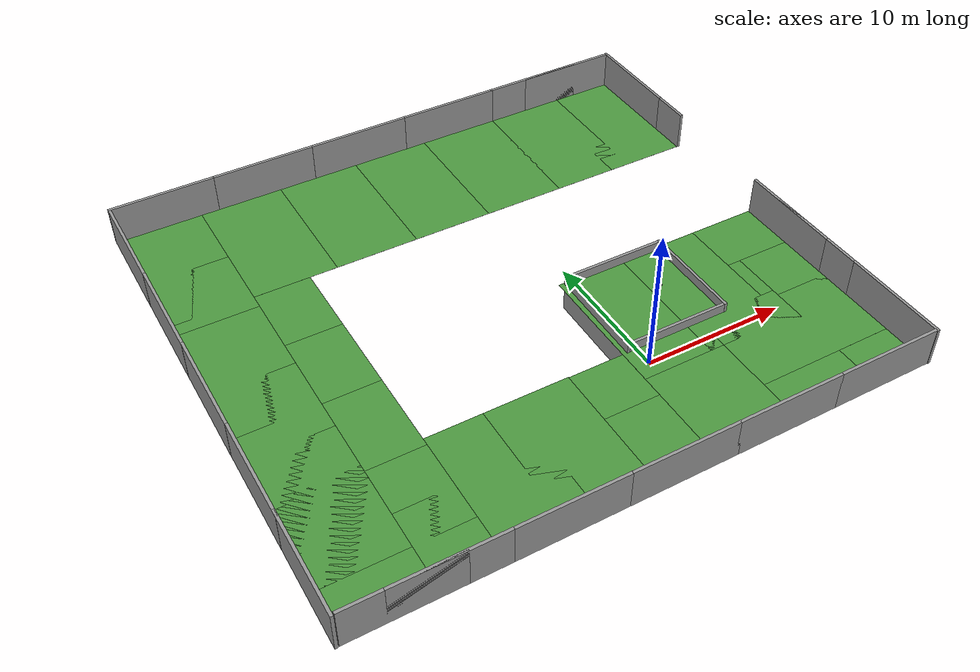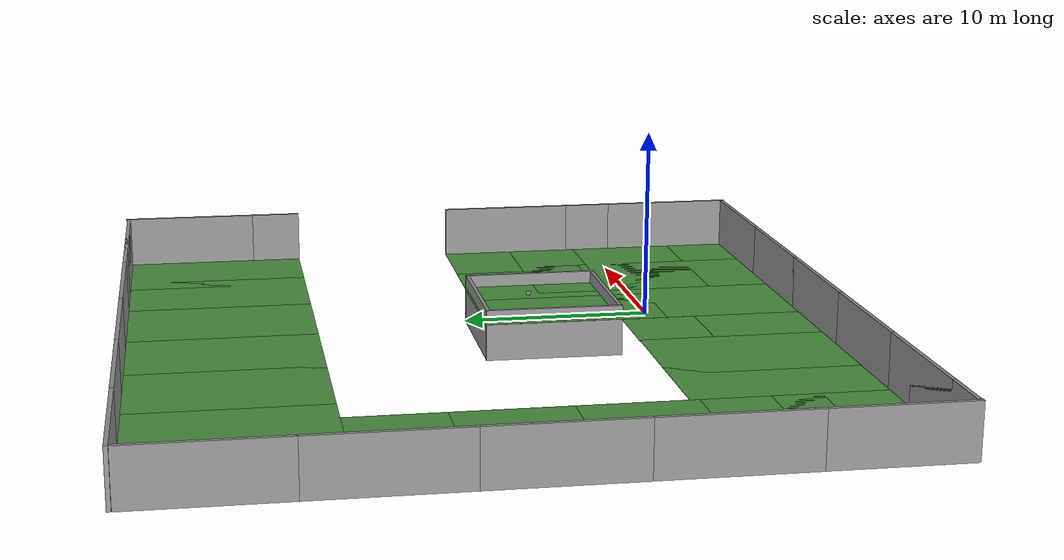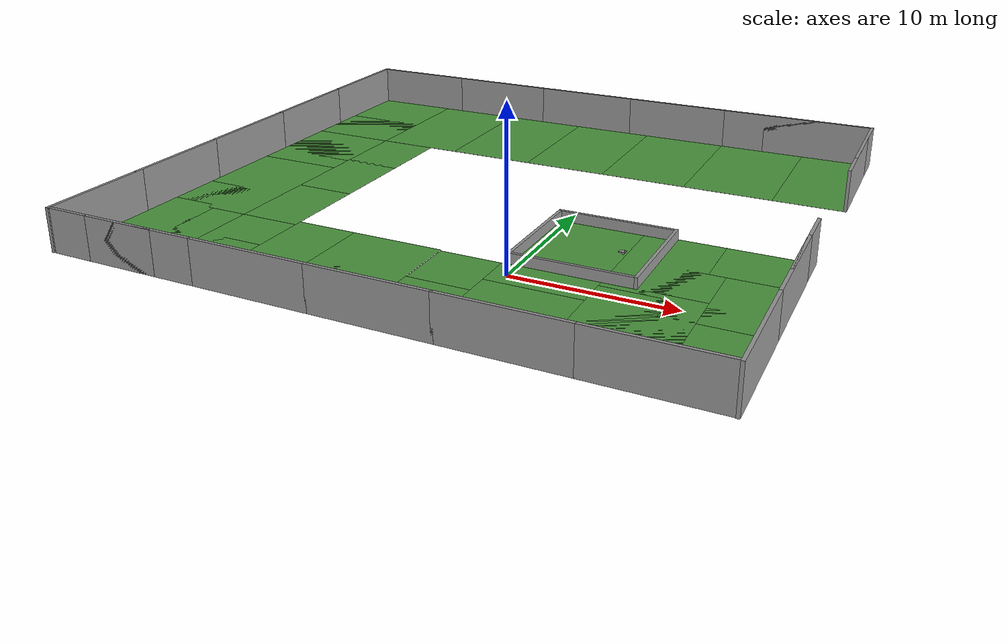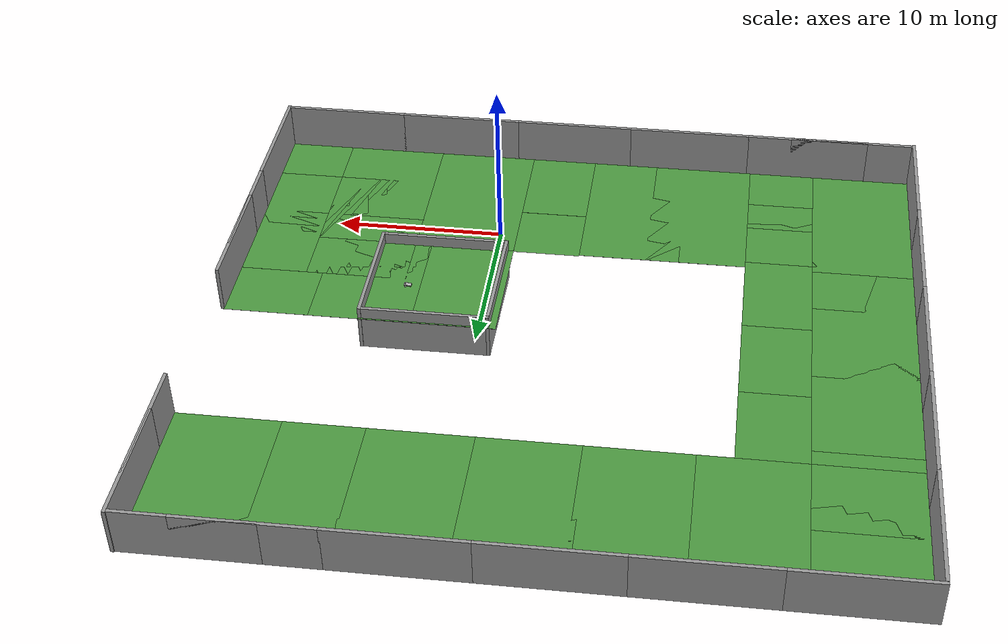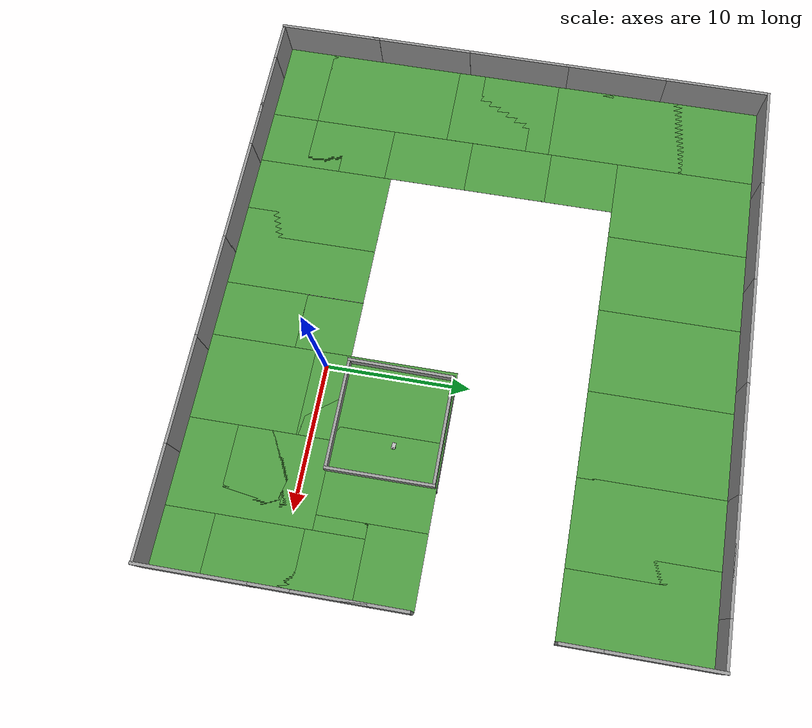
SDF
<sdf version="1.7">
 <world name="default">
  <physics name="ode_70iters" type="ode">
   <max_step_size>0.001</max_step_size>
   <real_time_update_rate>1000</real_time_update_rate>
   <ode>
    <solver>
     <type>quick</type>
     <iters>70</iters>
     <sor>1.3</sor>
     <use_dynamic_moi_rescaling>0</use_dynamic_moi_rescaling>
    </solver>
    <constraints>
     <cfm>0</cfm>
     <erp>0.2</erp>
     <contact_max_correcting_vel>100</contact_max_correcting_vel>
     <contact_surface_layer>0.001</contact_surface_layer>
    </constraints>
   </ode>
   <real_time_factor>1</real_time_factor>
  </physics>
  <model name="garden_0">
   <static>1</static>
   <link name="link">
    <collision name="collision">
     <geometry><plane><normal>0 0 1</normal><size>100 100</size></plane></geometry>
     <surface><friction><ode><mu>100</mu><mu2>50</mu2></ode></friction></surface>
    </collision>
    <visual name="visual_0">
     <pose>-2 0 0 0 -0 0</pose>
     <cast_shadows>0</cast_shadows>
     <geometry><plane><normal>0 0 1</normal><size>6 10</size></plane></geometry>
     <material>
      <script>
       <uri>model://garden/materials/scripts</uri>
       <uri>model://garden/materials/textures</uri>
       <name>vrc/grass</name>
      </script>
     </material>
    </visual>
    <visual name="visual_1">
     <pose>3 -2 0 0 -0 0</pose>
     <cast_shadows>0</cast_shadows>
     <geometry><plane><normal>0 0 1</normal><size>4 6</size></plane></geometry>
     <material>
      <script>
       <uri>model://garden/materials/scripts</uri>
       <uri>model://garden/materials/textures</uri>
       <name>vrc/grass</name>
      </script>
     </material>
    </visual>
   </link>
   <pose>0 0.5 0 0 -0 1.5708</pose>
  </model>
  <model name="garden_1">
   <static>1</static>
   <link name="link">
    <collision name="collision">
     <geometry><plane><normal>0 0 1</normal><size>100 100</size></plane></geometry>
     <surface><friction><ode><mu>100</mu><mu2>50</mu2></ode></friction></surface>
    </collision>
    <visual name="visual_0">
     <pose>-2 0 0 0 -0 0</pose>
     <cast_shadows>0</cast_shadows>
     <geometry><plane><normal>0 0 1</normal><size>6 10</size></plane></geometry>
     <material>
      <script>
       <uri>model://garden/materials/scripts</uri>
       <uri>model://garden/materials/textures</uri>
       <name>vrc/grass</name>
      </script>
     </material>
    </visual>
    <visual name="visual_1">
     <pose>3 -2 0 0 -0 0</pose>
     <cast_shadows>0</cast_shadows>
     <geometry><plane><normal>0 0 1</normal><size>4 6</size></plane></geometry>
     <material>
      <script>
       <uri>model://garden/materials/scripts</uri>
       <uri>model://garden/materials/textures</uri>
       <name>vrc/grass</name>
      </script>
     </material>
    </visual>
   </link>
   <pose>10 0 0 0 -0 1.5708</pose>
  </model>
  <model name="garden_2">
   <static>1</static>
   <link name="link">
    <collision name="collision">
     <geometry><plane><normal>0 0 1</normal><size>100 100</size></plane></geometry>
     <surface><friction><ode><mu>100</mu><mu2>50</mu2></ode></friction></surface>
    </collision>
    <visual name="visual_0">
     <pose>-2 0 0 0 -0 0</pose>
     <cast_shadows>0</cast_shadows>
     <geometry><plane><normal>0 0 1</normal><size>6 10</size></plane></geometry>
     <material>
      <script>
       <uri>model://garden/materials/scripts</uri>
       <uri>model://garden/materials/textures</uri>
       <name>vrc/grass</name>
      </script>
     </material>
    </visual>
    <visual name="visual_1">
     <pose>3 -2 0 0 -0 0</pose>
     <cast_shadows>0</cast_shadows>
     <geometry><plane><normal>0 0 1</normal><size>4 6</size></plane></geometry>
     <material>
      <script>
       <uri>model://garden/materials/scripts</uri>
       <uri>model://garden/materials/textures</uri>
       <name>vrc/grass</name>
      </script>
     </material>
    </visual>
   </link>
   <pose>10 0 0 0 -0 0</pose>
  </model>
  <model name="garden_3">
   <static>1</static>
   <link name="link">
    <collision name="collision">
     <geometry><plane><normal>0 0 1</normal><size>100 100</size></plane></geometry>
     <surface><friction><ode><mu>100</mu><mu2>50</mu2></ode></friction></surface>
    </collision>
    <visual name="visual_0">
     <pose>-2 0 0 0 -0 0</pose>
     <cast_shadows>0</cast_shadows>
     <geometry><plane><normal>0 0 1</normal><size>6 10</size></plane></geometry>
     <material>
      <script>
       <uri>model://garden/materials/scripts</uri>
       <uri>model://garden/materials/textures</uri>
       <name>vrc/grass</name>
      </script>
     </material>
    </visual>
    <visual name="visual_1">
     <pose>3 -2 0 0 -0 0</pose>
     <cast_shadows>0</cast_shadows>
     <geometry><plane><normal>0 0 1</normal><size>4 6</size></plane></geometry>
     <material>
      <script>
       <uri>model://garden/materials/scripts</uri>
       <uri>model://garden/materials/textures</uri>
       <name>vrc/grass</name>
      </script>
     </material>
    </visual>
   </link>
   <pose>4 4 0 0 -0 0</pose>
  </model>
  <model name="garden_4">
   <static>1</static>
   <link name="link">
    <collision name="collision">
     <geometry><plane><normal>0 0 1</normal><size>100 100</size></plane></geometry>
     <surface><friction><ode><mu>100</mu><mu2>50</mu2></ode></friction></surface>
    </collision>
    <visual name="visual_0">
     <pose>-2 0 0 0 -0 0</pose>
     <cast_shadows>0</cast_shadows>
     <geometry><plane><normal>0 0 1</normal><size>6 10</size></plane></geometry>
     <material>
      <script>
       <uri>model://garden/materials/scripts</uri>
       <uri>model://garden/materials/textures</uri>
       <name>vrc/grass</name>
      </script>
     </material>
    </visual>
    <visual name="visual_1">
     <pose>3 -2 0 0 -0 0</pose>
     <cast_shadows>0</cast_shadows>
     <geometry><plane><normal>0 0 1</normal><size>4 6</size></plane></geometry>
     <material>
      <script>
       <uri>model://garden/materials/scripts</uri>
       <uri>model://garden/materials/textures</uri>
       <name>vrc/grass</name>
      </script>
     </material>
    </visual>
   </link>
   <pose>9 4 0 0 -0 0</pose>
  </model>
  <model name="garden_5">
   <static>1</static>
   <link name="link">
    <collision name="collision">
     <geometry><plane><normal>0 0 1</normal><size>100 100</size></plane></geometry>
     <surface><friction><ode><mu>100</mu><mu2>50</mu2></ode></friction></surface>
    </collision>
    <visual name="visual_0">
     <pose>-2 0 0 0 -0 0</pose>
     <cast_shadows>0</cast_shadows>
     <geometry><plane><normal>0 0 1</normal><size>6 10</size></plane></geometry>
     <material>
      <script>
       <uri>model://garden/materials/scripts</uri>
       <uri>model://garden/materials/textures</uri>
       <name>vrc/grass</name>
      </script>
     </material>
    </visual>
    <visual name="visual_1">
     <pose>3 -2 0 0 -0 0</pose>
     <cast_shadows>0</cast_shadows>
     <geometry><plane><normal>0 0 1</normal><size>4 6</size></plane></geometry>
     <material>
      <script>
       <uri>model://garden/materials/scripts</uri>
       <uri>model://garden/materials/textures</uri>
       <name>vrc/grass</name>
      </script>
     </material>
    </visual>
   </link>
   <pose>10 4 0 0 -0 1.5708</pose>
  </model>
  <model name="garden_6">
   <static>1</static>
   <link name="link">
    <collision name="collision">
     <geometry><plane><normal>0 0 1</normal><size>100 100</size></plane></geometry>
     <surface><friction><ode><mu>100</mu><mu2>50</mu2></ode></friction></surface>
    </collision>
    <visual name="visual_0">
     <pose>-2 0 0 0 -0 0</pose>
     <cast_shadows>0</cast_shadows>
     <geometry><plane><normal>0 0 1</normal><size>6 10</size></plane></geometry>
     <material>
      <script>
       <uri>model://garden/materials/scripts</uri>
       <uri>model://garden/materials/textures</uri>
       <name>vrc/grass</name>
      </script>
     </material>
    </visual>
    <visual name="visual_1">
     <pose>3 -2 0 0 -0 0</pose>
     <cast_shadows>0</cast_shadows>
     <geometry><plane><normal>0 0 1</normal><size>4 6</size></plane></geometry>
     <material>
      <script>
       <uri>model://garden/materials/scripts</uri>
       <uri>model://garden/materials/textures</uri>
       <name>vrc/grass</name>
      </script>
     </material>
    </visual>
   </link>
   <pose>3.75 23 0 0 -0 0</pose>
  </model>
  <model name="garden_7">
   <static>1</static>
   <link name="link">
    <collision name="collision">
     <geometry><plane><normal>0 0 1</normal><size>100 100</size></plane></geometry>
     <surface><friction><ode><mu>100</mu><mu2>50</mu2></ode></friction></surface>
    </collision>
    <visual name="visual_0">
     <pose>-2 0 0 0 -0 0</pose>
     <cast_shadows>0</cast_shadows>
     <geometry><plane><normal>0 0 1</normal><size>6 10</size></plane></geometry>
     <material>
      <script>
       <uri>model://garden/materials/scripts</uri>
       <uri>model://garden/materials/textures</uri>
       <name>vrc/grass</name>
      </script>
     </material>
    </visual>
    <visual name="visual_1">
     <pose>3 -2 0 0 -0 0</pose>
     <cast_shadows>0</cast_shadows>
     <geometry><plane><normal>0 0 1</normal><size>4 6</size></plane></geometry>
     <material>
      <script>
       <uri>model://garden/materials/scripts</uri>
       <uri>model://garden/materials/textures</uri>
       <name>vrc/grass</name>
      </script>
     </material>
    </visual>
   </link>
   <pose>-10 -3.5 0 0 -0 0</pose>
  </model>
  <model name="garden_8">
   <static>1</static>
   <link name="link">
    <collision name="collision">
     <geometry><plane><normal>0 0 1</normal><size>100 100</size></plane></geometry>
     <surface><friction><ode><mu>100</mu><mu2>50</mu2></ode></friction></surface>
    </collision>
    <visual name="visual_0">
     <pose>-2 0 0 0 -0 0</pose>
     <cast_shadows>0</cast_shadows>
     <geometry><plane><normal>0 0 1</normal><size>6 10</size></plane></geometry>
     <material>
      <script>
       <uri>model://garden/materials/scripts</uri>
       <uri>model://garden/materials/textures</uri>
       <name>vrc/grass</name>
      </script>
     </material>
    </visual>
    <visual name="visual_1">
     <pose>3 -2 0 0 -0 0</pose>
     <cast_shadows>0</cast_shadows>
     <geometry><plane><normal>0 0 1</normal><size>4 6</size></plane></geometry>
     <material>
      <script>
       <uri>model://garden/materials/scripts</uri>
       <uri>model://garden/materials/textures</uri>
       <name>vrc/grass</name>
      </script>
     </material>
    </visual>
   </link>
   <pose>-6 -3.5 0 0 -0 0</pose>
  </model>
  <model name="garden_9">
   <static>1</static>
   <link name="link">
    <collision name="collision">
     <geometry><plane><normal>0 0 1</normal><size>100 100</size></plane></geometry>
     <surface><friction><ode><mu>100</mu><mu2>50</mu2></ode></friction></surface>
    </collision>
    <visual name="visual_0">
     <pose>-2 0 0 0 -0 0</pose>
     <cast_shadows>0</cast_shadows>
     <geometry><plane><normal>0 0 1</normal><size>6 10</size></plane></geometry>
     <material>
      <script>
       <uri>model://garden/materials/scripts</uri>
       <uri>model://garden/materials/textures</uri>
       <name>vrc/grass</name>
      </script>
     </material>
    </visual>
    <visual name="visual_1">
     <pose>3 -2 0 0 -0 0</pose>
     <cast_shadows>0</cast_shadows>
     <geometry><plane><normal>0 0 1</normal><size>4 6</size></plane></geometry>
     <material>
      <script>
       <uri>model://garden/materials/scripts</uri>
       <uri>model://garden/materials/textures</uri>
       <name>vrc/grass</name>
      </script>
     </material>
    </visual>
   </link>
   <pose>-20 0 0 0 -0 0</pose>
  </model>
  <model name="garden_10">
   <static>1</static>
   <link name="link">
    <collision name="collision">
     <geometry><plane><normal>0 0 1</normal><size>100 100</size></plane></geometry>
     <surface><friction><ode><mu>100</mu><mu2>50</mu2></ode></friction></surface>
    </collision>
    <visual name="visual_0">
     <pose>-2 0 0 0 -0 0</pose>
     <cast_shadows>0</cast_shadows>
     <geometry><plane><normal>0 0 1</normal><size>6 10</size></plane></geometry>
     <material>
      <script>
       <uri>model://garden/materials/scripts</uri>
       <uri>model://garden/materials/textures</uri>
       <name>vrc/grass</name>
      </script>
     </material>
    </visual>
    <visual name="visual_1">
     <pose>3 -2 0 0 -0 0</pose>
     <cast_shadows>0</cast_shadows>
     <geometry><plane><normal>0 0 1</normal><size>4 6</size></plane></geometry>
     <material>
      <script>
       <uri>model://garden/materials/scripts</uri>
       <uri>model://garden/materials/textures</uri>
       <name>vrc/grass</name>
      </script>
     </material>
    </visual>
   </link>
   <pose>-20 6 0 0 -0 0</pose>
  </model>
  <model name="garden_11">
   <static>1</static>
   <link name="link">
    <collision name="collision">
     <geometry><plane><normal>0 0 1</normal><size>100 100</size></plane></geometry>
     <surface><friction><ode><mu>100</mu><mu2>50</mu2></ode></friction></surface>
    </collision>
    <visual name="visual_0">
     <pose>-2 0 0 0 -0 0</pose>
     <cast_shadows>0</cast_shadows>
     <geometry><plane><normal>0 0 1</normal><size>6 10</size></plane></geometry>
     <material>
      <script>
       <uri>model://garden/materials/scripts</uri>
       <uri>model://garden/materials/textures</uri>
       <name>vrc/grass</name>
      </script>
     </material>
    </visual>
    <visual name="visual_1">
     <pose>3 -2 0 0 -0 0</pose>
     <cast_shadows>0</cast_shadows>
     <geometry><plane><normal>0 0 1</normal><size>4 6</size></plane></geometry>
     <material>
      <script>
       <uri>model://garden/materials/scripts</uri>
       <uri>model://garden/materials/textures</uri>
       <name>vrc/grass</name>
      </script>
     </material>
    </visual>
   </link>
   <pose>-20 12 0 0 -0 0</pose>
  </model>
  <model name="garden_12">
   <static>1</static>
   <link name="link">
    <collision name="collision">
     <geometry><plane><normal>0 0 1</normal><size>100 100</size></plane></geometry>
     <surface><friction><ode><mu>100</mu><mu2>50</mu2></ode></friction></surface>
    </collision>
    <visual name="visual_0">
     <pose>-2 0 0 0 -0 0</pose>
     <cast_shadows>0</cast_shadows>
     <geometry><plane><normal>0 0 1</normal><size>6 10</size></plane></geometry>
     <material>
      <script>
       <uri>model://garden/materials/scripts</uri>
       <uri>model://garden/materials/textures</uri>
       <name>vrc/grass</name>
      </script>
     </material>
    </visual>
    <visual name="visual_1">
     <pose>3 -2 0 0 -0 0</pose>
     <cast_shadows>0</cast_shadows>
     <geometry><plane><normal>0 0 1</normal><size>4 6</size></plane></geometry>
     <material>
      <script>
       <uri>model://garden/materials/scripts</uri>
       <uri>model://garden/materials/textures</uri>
       <name>vrc/grass</name>
      </script>
     </material>
    </visual>
   </link>
   <pose>-20 17.75 0 0 -0 0</pose>
  </model>
  <model name="garden_13">
   <static>1</static>
   <link name="link">
    <collision name="collision">
     <geometry><plane><normal>0 0 1</normal><size>100 100</size></plane></geometry>
     <surface><friction><ode><mu>100</mu><mu2>50</mu2></ode></friction></surface>
    </collision>
    <visual name="visual_0">
     <pose>-2 0 0 0 -0 0</pose>
     <cast_shadows>0</cast_shadows>
     <geometry><plane><normal>0 0 1</normal><size>6 10</size></plane></geometry>
     <material>
      <script>
       <uri>model://garden/materials/scripts</uri>
       <uri>model://garden/materials/textures</uri>
       <name>vrc/grass</name>
      </script>
     </material>
    </visual>
    <visual name="visual_1">
     <pose>3 -2 0 0 -0 0</pose>
     <cast_shadows>0</cast_shadows>
     <geometry><plane><normal>0 0 1</normal><size>4 6</size></plane></geometry>
     <material>
      <script>
       <uri>model://garden/materials/scripts</uri>
       <uri>model://garden/materials/textures</uri>
       <name>vrc/grass</name>
      </script>
     </material>
    </visual>
   </link>
   <pose>-20 23 0 0 -0 0</pose>
  </model>
  <model name="garden_14">
   <static>1</static>
   <link name="link">
    <collision name="collision">
     <geometry><plane><normal>0 0 1</normal><size>100 100</size></plane></geometry>
     <surface><friction><ode><mu>100</mu><mu2>50</mu2></ode></friction></surface>
    </collision>
    <visual name="visual_0">
     <pose>-2 0 0 0 -0 0</pose>
     <cast_shadows>0</cast_shadows>
     <geometry><plane><normal>0 0 1</normal><size>6 10</size></plane></geometry>
     <material>
      <script>
       <uri>model://garden/materials/scripts</uri>
       <uri>model://garden/materials/textures</uri>
       <name>vrc/grass</name>
      </script>
     </material>
    </visual>
    <visual name="visual_1">
     <pose>3 -2 0 0 -0 0</pose>
     <cast_shadows>0</cast_shadows>
     <geometry><plane><normal>0 0 1</normal><size>4 6</size></plane></geometry>
     <material>
      <script>
       <uri>model://garden/materials/scripts</uri>
       <uri>model://garden/materials/textures</uri>
       <name>vrc/grass</name>
      </script>
     </material>
    </visual>
   </link>
   <pose>-14 23 0 0 -0 0</pose>
  </model>
  <model name="garden_15">
   <static>1</static>
   <link name="link">
    <collision name="collision">
     <geometry><plane><normal>0 0 1</normal><size>100 100</size></plane></geometry>
     <surface><friction><ode><mu>100</mu><mu2>50</mu2></ode></friction></surface>
    </collision>
    <visual name="visual_0">
     <pose>-2 0 0 0 -0 0</pose>
     <cast_shadows>0</cast_shadows>
     <geometry><plane><normal>0 0 1</normal><size>6 10</size></plane></geometry>
     <material>
      <script>
       <uri>model://garden/materials/scripts</uri>
       <uri>model://garden/materials/textures</uri>
       <name>vrc/grass</name>
      </script>
     </material>
    </visual>
    <visual name="visual_1">
     <pose>3 -2 0 0 -0 0</pose>
     <cast_shadows>0</cast_shadows>
     <geometry><plane><normal>0 0 1</normal><size>4 6</size></plane></geometry>
     <material>
      <script>
       <uri>model://garden/materials/scripts</uri>
       <uri>model://garden/materials/textures</uri>
       <name>vrc/grass</name>
      </script>
     </material>
    </visual>
   </link>
   <pose>-8 23 0 0 -0 0</pose>
  </model>
  <model name="garden_16">
   <static>1</static>
   <link name="link">
    <collision name="collision">
     <geometry><plane><normal>0 0 1</normal><size>100 100</size></plane></geometry>
     <surface><friction><ode><mu>100</mu><mu2>50</mu2></ode></friction></surface>
    </collision>
    <visual name="visual_0">
     <pose>-2 0 0 0 -0 0</pose>
     <cast_shadows>0</cast_shadows>
     <geometry><plane><normal>0 0 1</normal><size>6 10</size></plane></geometry>
     <material>
      <script>
       <uri>model://garden/materials/scripts</uri>
       <uri>model://garden/materials/textures</uri>
       <name>vrc/grass</name>
      </script>
     </material>
    </visual>
    <visual name="visual_1">
     <pose>3 -2 0 0 -0 0</pose>
     <cast_shadows>0</cast_shadows>
     <geometry><plane><normal>0 0 1</normal><size>4 6</size></plane></geometry>
     <material>
      <script>
       <uri>model://garden/materials/scripts</uri>
       <uri>model://garden/materials/textures</uri>
       <name>vrc/grass</name>
      </script>
     </material>
    </visual>
   </link>
   <pose>-2.25 23 0 0 -0 0</pose>
  </model>
  <model name="garden_17">
   <static>1</static>
   <link name="link">
    <collision name="collision">
     <geometry><plane><normal>0 0 1</normal><size>100 100</size></plane></geometry>
     <surface><friction><ode><mu>100</mu><mu2>50</mu2></ode></friction></surface>
    </collision>
    <visual name="visual_0">
     <pose>-2 0 0 0 -0 0</pose>
     <cast_shadows>0</cast_shadows>
     <geometry><plane><normal>0 0 1</normal><size>6 10</size></plane></geometry>
     <material>
      <script>
       <uri>model://garden/materials/scripts</uri>
       <uri>model://garden/materials/textures</uri>
       <name>vrc/grass</name>
      </script>
     </material>
    </visual>
    <visual name="visual_1">
     <pose>3 -2 0 0 -0 0</pose>
     <cast_shadows>0</cast_shadows>
     <geometry><plane><normal>0 0 1</normal><size>4 6</size></plane></geometry>
     <material>
      <script>
       <uri>model://garden/materials/scripts</uri>
       <uri>model://garden/materials/textures</uri>
       <name>vrc/grass</name>
      </script>
     </material>
    </visual>
   </link>
   <pose>-20 -3.5 0 0 -0 0</pose>
  </model>
  <model name="garden_18">
   <static>1</static>
   <link name="link">
    <collision name="collision">
     <geometry><plane><normal>0 0 1</normal><size>100 100</size></plane></geometry>
     <surface><friction><ode><mu>100</mu><mu2>50</mu2></ode></friction></surface>
    </collision>
    <visual name="visual_0">
     <pose>-2 0 0 0 -0 0</pose>
     <cast_shadows>0</cast_shadows>
     <geometry><plane><normal>0 0 1</normal><size>6 10</size></plane></geometry>
     <material>
      <script>
       <uri>model://garden/materials/scripts</uri>
       <uri>model://garden/materials/textures</uri>
       <name>vrc/grass</name>
      </script>
     </material>
    </visual>
    <visual name="visual_1">
     <pose>3 -2 0 0 -0 0</pose>
     <cast_shadows>0</cast_shadows>
     <geometry><plane><normal>0 0 1</normal><size>4 6</size></plane></geometry>
     <material>
      <script>
       <uri>model://garden/materials/scripts</uri>
       <uri>model://garden/materials/textures</uri>
       <name>vrc/grass</name>
      </script>
     </material>
    </visual>
   </link>
   <pose>4 -3.5 0 0 -0 0</pose>
  </model>
  <model name="garden_19">
   <static>1</static>
   <link name="link">
    <collision name="collision">
     <geometry><plane><normal>0 0 1</normal><size>100 100</size></plane></geometry>
     <surface><friction><ode><mu>100</mu><mu2>50</mu2></ode></friction></surface>
    </collision>
    <visual name="visual_0">
     <pose>-2 0 0 0 -0 0</pose>
     <cast_shadows>0</cast_shadows>
     <geometry><plane><normal>0 0 1</normal><size>6 10</size></plane></geometry>
     <material>
      <script>
       <uri>model://garden/materials/scripts</uri>
       <uri>model://garden/materials/textures</uri>
       <name>vrc/grass</name>
      </script>
     </material>
    </visual>
    <visual name="visual_1">
     <pose>3 -2 0 0 -0 0</pose>
     <cast_shadows>0</cast_shadows>
     <geometry><plane><normal>0 0 1</normal><size>4 6</size></plane></geometry>
     <material>
      <script>
       <uri>model://garden/materials/scripts</uri>
       <uri>model://garden/materials/textures</uri>
       <name>vrc/grass</name>
      </script>
     </material>
    </visual>
   </link>
   <pose>10 -3.5 0 0 -0 0</pose>
  </model>
  <model name="garden_20">
   <static>1</static>
   <link name="link">
    <collision name="collision">
     <geometry><plane><normal>0 0 1</normal><size>100 100</size></plane></geometry>
     <surface><friction><ode><mu>100</mu><mu2>50</mu2></ode></friction></surface>
    </collision>
    <visual name="visual_0">
     <pose>-2 0 0 0 -0 0</pose>
     <cast_shadows>0</cast_shadows>
     <geometry><plane><normal>0 0 1</normal><size>6 10</size></plane></geometry>
     <material>
      <script>
       <uri>model://garden/materials/scripts</uri>
       <uri>model://garden/materials/textures</uri>
       <name>vrc/grass</name>
      </script>
     </material>
    </visual>
    <visual name="visual_1">
     <pose>3 -2 0 0 -0 0</pose>
     <cast_shadows>0</cast_shadows>
     <geometry><plane><normal>0 0 1</normal><size>4 6</size></plane></geometry>
     <material>
      <script>
       <uri>model://garden/materials/scripts</uri>
       <uri>model://garden/materials/textures</uri>
       <name>vrc/grass</name>
      </script>
     </material>
    </visual>
   </link>
   <pose>9.66 23 0 0 -0 0</pose>
  </model>
  <model name="garden_21">
   <static>1</static>
   <link name="link">
    <collision name="collision">
     <geometry><plane><normal>0 0 1</normal><size>100 100</size></plane></geometry>
     <surface><friction><ode><mu>100</mu><mu2>50</mu2></ode></friction></surface>
    </collision>
    <visual name="visual_0">
     <pose>-2 0 0 0 -0 0</pose>
     <cast_shadows>0</cast_shadows>
     <geometry><plane><normal>0 0 1</normal><size>6 10</size></plane></geometry>
     <material>
      <script>
       <uri>model://garden/materials/scripts</uri>
       <uri>model://garden/materials/textures</uri>
       <name>vrc/grass</name>
      </script>
     </material>
    </visual>
    <visual name="visual_1">
     <pose>3 -2 0 0 -0 0</pose>
     <cast_shadows>0</cast_shadows>
     <geometry><plane><normal>0 0 1</normal><size>4 6</size></plane></geometry>
     <material>
      <script>
       <uri>model://garden/materials/scripts</uri>
       <uri>model://garden/materials/textures</uri>
       <name>vrc/grass</name>
      </script>
     </material>
    </visual>
   </link>
   <pose>10.25 23 0 0 -0 3.14159</pose>
  </model>
  <model name="grey_wall_0">
   <static>1</static>
   <link name="link">
    <pose>0 0 1.4 0 -0 0</pose>
    <collision name="collision"><geometry><box><size>7.5 0.2 2.8</size></box></geometry></collision>
    <visual name="visual">
     <cast_shadows>0</cast_shadows>
     <geometry><box><size>7.5 0.2 2.8</size></box></geometry>
     <material>
      <script>
       <uri>model://grey_wall/materials/scripts</uri>
       <uri>model://grey_wall/materials/textures</uri>
       <name>vrc/grey_wall</name>
      </script>
     </material>
    </visual>
   </link>
   <pose>15.0243 5.21157 0 0 -0 1.57</pose>
  </model>
  <model name="grey_wall_1">
   <static>1</static>
   <link name="link">
    <pose>0 0 1.4 0 -0 0</pose>
    <collision name="collision"><geometry><box><size>7.5 0.2 2.8</size></box></geometry></collision>
    <visual name="visual">
     <cast_shadows>0</cast_shadows>
     <geometry><box><size>7.5 0.2 2.8</size></box></geometry>
     <material>
      <script>
       <uri>model://grey_wall/materials/scripts</uri>
       <uri>model://grey_wall/materials/textures</uri>
       <name>vrc/grey_wall</name>
      </script>
     </material>
    </visual>
   </link>
   <pose>15.0243 2.54421 0 0 -0 1.57</pose>
  </model>
  <model name="grey_wall_2">
   <static>1</static>
   <link name="link">
    <pose>0 0 1.4 0 -0 0</pose>
    <collision name="collision"><geometry><box><size>7.5 0.2 2.8</size></box></geometry></collision>
    <visual name="visual">
     <cast_shadows>0</cast_shadows>
     <geometry><box><size>7.5 0.2 2.8</size></box></geometry>
     <material>
      <script>
       <uri>model://grey_wall/materials/scripts</uri>
       <uri>model://grey_wall/materials/textures</uri>
       <name>vrc/grey_wall</name>
      </script>
     </material>
    </visual>
   </link>
   <pose>15.0243 -4.89 0 0 -0 1.57</pose>
  </model>
  <model name="grey_wall_3">
   <static>1</static>
   <link name="link">
    <pose>0 0 1.4 0 -0 0</pose>
    <collision name="collision"><geometry><box><size>7.5 0.2 2.8</size></box></geometry></collision>
    <visual name="visual">
     <cast_shadows>0</cast_shadows>
     <geometry><box><size>7.5 0.2 2.8</size></box></geometry>
     <material>
      <script>
       <uri>model://grey_wall/materials/scripts</uri>
       <uri>model://grey_wall/materials/textures</uri>
       <name>vrc/grey_wall</name>
      </script>
     </material>
    </visual>
   </link>
   <pose>11.2137 -8.5 0 0 -0 0</pose>
  </model>
  <model name="grey_wall_4">
   <static>1</static>
   <link name="link">
    <pose>0 0 1.4 0 -0 0</pose>
    <collision name="collision"><geometry><box><size>7.5 0.2 2.8</size></box></geometry></collision>
    <visual name="visual">
     <cast_shadows>0</cast_shadows>
     <geometry><box><size>7.5 0.2 2.8</size></box></geometry>
     <material>
      <script>
       <uri>model://grey_wall/materials/scripts</uri>
       <uri>model://grey_wall/materials/textures</uri>
       <name>vrc/grey_wall</name>
      </script>
     </material>
    </visual>
   </link>
   <pose>3.7659 -8.5 0 0 -0 0</pose>
  </model>
  <model name="grey_wall_5">
   <static>1</static>
   <link name="link">
    <pose>0 0 1.4 0 -0 0</pose>
    <collision name="collision"><geometry><box><size>7.5 0.2 2.8</size></box></geometry></collision>
    <visual name="visual">
     <cast_shadows>0</cast_shadows>
     <geometry><box><size>7.5 0.2 2.8</size></box></geometry>
     <material>
      <script>
       <uri>model://grey_wall/materials/scripts</uri>
       <uri>model://grey_wall/materials/textures</uri>
       <name>vrc/grey_wall</name>
      </script>
     </material>
    </visual>
   </link>
   <pose>-3.57393 -8.5 0 0 -0 0</pose>
  </model>
  <model name="grey_wall_6">
   <static>1</static>
   <link name="link">
    <pose>0 0 1.4 0 -0 0</pose>
    <collision name="collision"><geometry><box><size>7.5 0.2 2.8</size></box></geometry></collision>
    <visual name="visual">
     <cast_shadows>0</cast_shadows>
     <geometry><box><size>7.5 0.2 2.8</size></box></geometry>
     <material>
      <script>
       <uri>model://grey_wall/materials/scripts</uri>
       <uri>model://grey_wall/materials/textures</uri>
       <name>vrc/grey_wall</name>
      </script>
     </material>
    </visual>
   </link>
   <pose>-10.9924 -8.5 0 0 -0 0</pose>
  </model>
  <model name="grey_wall_7">
   <static>1</static>
   <link name="link">
    <pose>0 0 1.4 0 -0 0</pose>
    <collision name="collision"><geometry><box><size>7.5 0.2 2.8</size></box></geometry></collision>
    <visual name="visual">
     <cast_shadows>0</cast_shadows>
     <geometry><box><size>7.5 0.2 2.8</size></box></geometry>
     <material>
      <script>
       <uri>model://grey_wall/materials/scripts</uri>
       <uri>model://grey_wall/materials/textures</uri>
       <name>vrc/grey_wall</name>
      </script>
     </material>
    </visual>
   </link>
   <pose>-18.446 -8.5 0 0 -0 0</pose>
  </model>
  <model name="grey_wall_8">
   <static>1</static>
   <link name="link">
    <pose>0 0 1.4 0 -0 0</pose>
    <collision name="collision"><geometry><box><size>7.5 0.2 2.8</size></box></geometry></collision>
    <visual name="visual">
     <cast_shadows>0</cast_shadows>
     <geometry><box><size>7.5 0.2 2.8</size></box></geometry>
     <material>
      <script>
       <uri>model://grey_wall/materials/scripts</uri>
       <uri>model://grey_wall/materials/textures</uri>
       <name>vrc/grey_wall</name>
      </script>
     </material>
    </visual>
   </link>
   <pose>-21.172 -8.5 0 0 -0 0</pose>
  </model>
  <model name="grey_wall_9">
   <static>1</static>
   <link name="link">
    <pose>0 0 1.4 0 -0 0</pose>
    <collision name="collision"><geometry><box><size>7.5 0.2 2.8</size></box></geometry></collision>
    <visual name="visual">
     <cast_shadows>0</cast_shadows>
     <geometry><box><size>7.5 0.2 2.8</size></box></geometry>
     <material>
      <script>
       <uri>model://grey_wall/materials/scripts</uri>
       <uri>model://grey_wall/materials/textures</uri>
       <name>vrc/grey_wall</name>
      </script>
     </material>
    </visual>
   </link>
   <pose>-25.068 -4.89 0 0 -0 1.57</pose>
  </model>
  <model name="grey_wall_10">
   <static>1</static>
   <link name="link">
    <pose>0 0 1.4 0 -0 0</pose>
    <collision name="collision"><geometry><box><size>7.5 0.2 2.8</size></box></geometry></collision>
    <visual name="visual">
     <cast_shadows>0</cast_shadows>
     <geometry><box><size>7.5 0.2 2.8</size></box></geometry>
     <material>
      <script>
       <uri>model://grey_wall/materials/scripts</uri>
       <uri>model://grey_wall/materials/textures</uri>
       <name>vrc/grey_wall</name>
      </script>
     </material>
    </visual>
   </link>
   <pose>-25.068 2.0456 0 0 -0 1.57</pose>
  </model>
  <model name="grey_wall_11">
   <static>1</static>
   <link name="link">
    <pose>0 0 1.4 0 -0 0</pose>
    <collision name="collision"><geometry><box><size>7.5 0.2 2.8</size></box></geometry></collision>
    <visual name="visual">
     <cast_shadows>0</cast_shadows>
     <geometry><box><size>7.5 0.2 2.8</size></box></geometry>
     <material>
      <script>
       <uri>model://grey_wall/materials/scripts</uri>
       <uri>model://grey_wall/materials/textures</uri>
       <name>vrc/grey_wall</name>
      </script>
     </material>
    </visual>
   </link>
   <pose>-25.068 9.52776 0 0 -0 1.57</pose>
  </model>
  <model name="grey_wall_12">
   <static>1</static>
   <link name="link">
    <pose>0 0 1.4 0 -0 0</pose>
    <collision name="collision"><geometry><box><size>7.5 0.2 2.8</size></box></geometry></collision>
    <visual name="visual">
     <cast_shadows>0</cast_shadows>
     <geometry><box><size>7.5 0.2 2.8</size></box></geometry>
     <material>
      <script>
       <uri>model://grey_wall/materials/scripts</uri>
       <uri>model://grey_wall/materials/textures</uri>
       <name>vrc/grey_wall</name>
      </script>
     </material>
    </visual>
   </link>
   <pose>-25.068 16.831 0 0 -0 1.57</pose>
  </model>
  <model name="grey_wall_13">
   <static>1</static>
   <link name="link">
    <pose>0 0 1.4 0 -0 0</pose>
    <collision name="collision"><geometry><box><size>7.5 0.2 2.8</size></box></geometry></collision>
    <visual name="visual">
     <cast_shadows>0</cast_shadows>
     <geometry><box><size>7.5 0.2 2.8</size></box></geometry>
     <material>
      <script>
       <uri>model://grey_wall/materials/scripts</uri>
       <uri>model://grey_wall/materials/textures</uri>
       <name>vrc/grey_wall</name>
      </script>
     </material>
    </visual>
   </link>
   <pose>-25.068 24.2406 0 0 -0 1.57</pose>
  </model>
  <model name="grey_wall_14">
   <static>1</static>
   <link name="link">
    <pose>0 0 1.4 0 -0 0</pose>
    <collision name="collision"><geometry><box><size>7.5 0.2 2.8</size></box></geometry></collision>
    <visual name="visual">
     <cast_shadows>0</cast_shadows>
     <geometry><box><size>7.5 0.2 2.8</size></box></geometry>
     <material>
      <script>
       <uri>model://grey_wall/materials/scripts</uri>
       <uri>model://grey_wall/materials/textures</uri>
       <name>vrc/grey_wall</name>
      </script>
     </material>
    </visual>
   </link>
   <pose>-21.4073 28.1 0 0 -0 0</pose>
  </model>
  <model name="grey_wall_15">
   <static>1</static>
   <link name="link">
    <pose>0 0 1.4 0 -0 0</pose>
    <collision name="collision"><geometry><box><size>7.5 0.2 2.8</size></box></geometry></collision>
    <visual name="visual">
     <cast_shadows>0</cast_shadows>
     <geometry><box><size>7.5 0.2 2.8</size></box></geometry>
     <material>
      <script>
       <uri>model://grey_wall/materials/scripts</uri>
       <uri>model://grey_wall/materials/textures</uri>
       <name>vrc/grey_wall</name>
      </script>
     </material>
    </visual>
   </link>
   <pose>-13.9233 28.1 0 0 -0 0</pose>
  </model>
  <model name="grey_wall_16">
   <static>1</static>
   <link name="link">
    <pose>0 0 1.4 0 -0 0</pose>
    <collision name="collision"><geometry><box><size>7.5 0.2 2.8</size></box></geometry></collision>
    <visual name="visual">
     <cast_shadows>0</cast_shadows>
     <geometry><box><size>7.5 0.2 2.8</size></box></geometry>
     <material>
      <script>
       <uri>model://grey_wall/materials/scripts</uri>
       <uri>model://grey_wall/materials/textures</uri>
       <name>vrc/grey_wall</name>
      </script>
     </material>
    </visual>
   </link>
   <pose>-6.46638 28.1 0 0 -0 0</pose>
  </model>
  <model name="grey_wall_17">
   <static>1</static>
   <link name="link">
    <pose>0 0 1.4 0 -0 0</pose>
    <collision name="collision"><geometry><box><size>7.5 0.2 2.8</size></box></geometry></collision>
    <visual name="visual">
     <cast_shadows>0</cast_shadows>
     <geometry><box><size>7.5 0.2 2.8</size></box></geometry>
     <material>
      <script>
       <uri>model://grey_wall/materials/scripts</uri>
       <uri>model://grey_wall/materials/textures</uri>
       <name>vrc/grey_wall</name>
      </script>
     </material>
    </visual>
   </link>
   <pose>1 28.1 0 0 -0 0</pose>
  </model>
  <model name="grey_wall_18">
   <static>1</static>
   <link name="link">
    <pose>0 0 1.4 0 -0 0</pose>
    <collision name="collision"><geometry><box><size>7.5 0.2 2.8</size></box></geometry></collision>
    <visual name="visual">
     <cast_shadows>0</cast_shadows>
     <geometry><box><size>7.5 0.2 2.8</size></box></geometry>
     <material>
      <script>
       <uri>model://grey_wall/materials/scripts</uri>
       <uri>model://grey_wall/materials/textures</uri>
       <name>vrc/grey_wall</name>
      </script>
     </material>
    </visual>
   </link>
   <pose>8.43917 28.1 0 0 -0 0</pose>
  </model>
  <model name="grey_wall_19">
   <static>1</static>
   <link name="link">
    <pose>0 0 1.4 0 -0 0</pose>
    <collision name="collision"><geometry><box><size>7.5 0.2 2.8</size></box></geometry></collision>
    <visual name="visual">
     <cast_shadows>0</cast_shadows>
     <geometry><box><size>7.5 0.2 2.8</size></box></geometry>
     <material>
      <script>
       <uri>model://grey_wall/materials/scripts</uri>
       <uri>model://grey_wall/materials/textures</uri>
       <name>vrc/grey_wall</name>
      </script>
     </material>
    </visual>
   </link>
   <pose>11.4623 28.1 0 0 -0 0</pose>
  </model>
  <model name="grey_wall_20">
   <static>1</static>
   <link name="link">
    <pose>0 0 1.4 0 -0 0</pose>
    <collision name="collision"><geometry><box><size>7.5 0.2 2.8</size></box></geometry></collision>
    <visual name="visual">
     <cast_shadows>0</cast_shadows>
     <geometry><box><size>7.5 0.2 2.8</size></box></geometry>
     <material>
      <script>
       <uri>model://grey_wall/materials/scripts</uri>
       <uri>model://grey_wall/materials/textures</uri>
       <name>vrc/grey_wall</name>
      </script>
     </material>
    </visual>
   </link>
   <pose>15.3 24.5 0 0 -0 1.57</pose>
  </model>
  <model name="grey_wall_21">
   <static>1</static>
   <link name="link">
    <pose>0 0 1.4 0 -0 0</pose>
    <collision name="collision"><geometry><box><size>7.5 0.2 2.8</size></box></geometry></collision>
    <visual name="visual">
     <cast_shadows>0</cast_shadows>
     <geometry><box><size>7.5 0.2 2.8</size></box></geometry>
     <material>
      <script>
       <uri>model://grey_wall/materials/scripts</uri>
       <uri>model://grey_wall/materials/textures</uri>
       <name>vrc/grey_wall</name>
      </script>
     </material>
    </visual>
   </link>
   <pose>15.3 21.7285 0 0 -0 1.57</pose>
  </model>
  <light name="sun" type="directional">
   <pose>0 0 10 0 -0 0</pose>
   <diffuse>0.8 0.8 0.8 1</diffuse>
   <specular>0.2 0.2 0.2 1</specular>
   <attenuation>
    <range>1000</range>
    <constant>0.9</constant>
    <linear>0.01</linear>
    <quadratic>0.001</quadratic>
   </attenuation>
   <direction>-0.5 0.1 -0.9</direction>
   <spot><inner_angle>0</inner_angle><outer_angle>0</outer_angle><falloff>0</falloff></spot>
  </light>
  <gravity>0 0 -9.8</gravity>
  <magnetic_field>6e-06 2.3e-05 -4.2e-05</magnetic_field>
  <atmosphere type="adiabatic"/>
  <scene><ambient>0.4 0.4 0.4 1</ambient><background>0.7 0.7 0.7 1</background><shadows>1</shadows></scene>
  <spherical_coordinates>
   <surface_model>EARTH_WGS84</surface_model>
   <latitude_deg>33.83</latitude_deg>
   <longitude_deg>-84.42</longitude_deg>
   <elevation>0</elevation>
   <heading_deg>180</heading_deg>
  </spherical_coordinates>
  <model name="grey_wall">
   <static>1</static>
   <link name="link">
    <pose>0 0 1.4 0 -0 0</pose>
    <collision name="collision"><geometry><box><size>7.5 0.2 2.8</size></box></geometry></collision>
    <visual name="visual">
     <cast_shadows>0</cast_shadows>
     <geometry><box><size>7.5 0.2 2.8</size></box></geometry>
     <material>
      <script>
       <uri>model://grey_wall/materials/scripts</uri>
       <uri>model://grey_wall/materials/textures</uri>
       <name>vrc/grey_wall</name>
      </script>
     </material>
    </visual>
   </link>
   <pose>3.11733 1.53265 -2.11544 0 -0 0</pose>
  </model>
  <model name="grey_wall_22">
   <static>1</static>
   <link name="link">
    <pose>0 0 1.4 0 -0 0</pose>
    <collision name="collision"><geometry><box><size>7.5 0.2 2.8</size></box></geometry></collision>
    <visual name="visual">
     <cast_shadows>0</cast_shadows>
     <geometry><box><size>7.5 0.2 2.8</size></box></geometry>
     <material>
      <script>
       <uri>model://grey_wall/materials/scripts</uri>
       <uri>model://grey_wall/materials/textures</uri>
       <name>vrc/grey_wall</name>
      </script>
     </material>
    </visual>
   </link>
   <pose>3.1918 8.80664 -2.11276 0 -0 0</pose>
  </model>
  <model name="grey_wall_23">
   <static>1</static>
   <link name="link">
    <pose>0 0 1.4 0 -0 0</pose>
    <collision name="collision"><geometry><box><size>7.5 0.2 2.8</size></box></geometry></collision>
    <visual name="visual">
     <cast_shadows>0</cast_shadows>
     <geometry><box><size>7.5 0.2 2.8</size></box></geometry>
     <material>
      <script>
       <uri>model://grey_wall/materials/scripts</uri>
       <uri>model://grey_wall/materials/textures</uri>
       <name>vrc/grey_wall</name>
      </script>
     </material>
    </visual>
   </link>
   <pose>-0.548986 5.16412 -2.11493 0 0 -1.58087</pose>
  </model>
  <model name="grey_wall_24">
   <static>1</static>
   <link name="link">
    <pose>0 0 1.4 0 -0 0</pose>
    <collision name="collision"><geometry><box><size>7.5 0.2 2.8</size></box></geometry></collision>
    <visual name="visual">
     <cast_shadows>0</cast_shadows>
     <geometry><box><size>7.5 0.2 2.8</size></box></geometry>
     <material>
      <script>
       <uri>model://grey_wall/materials/scripts</uri>
       <uri>model://grey_wall/materials/textures</uri>
       <name>vrc/grey_wall</name>
      </script>
     </material>
    </visual>
   </link>
   <pose>6.96141 5.17353 -2.1075 0 -0 1.57177</pose>
  </model>
  <model name="dandy_robot_lidar">
   <static>0</static>
   <pose>4.71822 5.64542 0.118083 -4e-06 -0.064476 -0.103743</pose>
   <link name="base_footprint">
    <inertial>
     <inertia><ixx>1</ixx><ixy>0</ixy><ixz>0</ixz><iyy>1</iyy><iyz>0</iyz><izz>1</izz></inertia>
     <mass>1</mass>
    </inertial>
   </link>
   <link name="base_link">
    <collision name="base_collision">
     <geometry><box><size>0.4385 0.25 0.06</size></box></geometry>
     <mass>40.0</mass>
    </collision>
    <visual name="base_visual"><geometry><box><size>0.4385 0.25 0.06</size></box></geometry></visual>
    <inertial>
     <inertia><ixx>1</ixx><ixy>0</ixy><ixz>0</ixz><iyy>1</iyy><iyz>0</iyz><izz>1</izz></inertia>
     <mass>1</mass>
    </inertial>
   </link>
   <link name="imu_link">
    <pose>-0.07225 0.083 0.05 0 -0 0</pose>
    <sensor name="bmb_imu" type="imu">
     <always_on>1</always_on>
     <update_rate>100</update_rate>
     <visualize>1</visualize>
     <imu>
      <angular_velocity>
       <x><noise type="gaussian"><mean>0</mean><stddev>0.0002</stddev></noise></x>
       <y><noise type="gaussian"><mean>0</mean><stddev>0.0002</stddev></noise></y>
       <z><noise type="gaussian"><mean>0</mean><stddev>0.0002</stddev></noise></z>
      </angular_velocity>
      <linear_acceleration>
       <x><noise type="gaussian"><mean>0</mean><stddev>0.017</stddev></noise></x>
       <y><noise type="gaussian"><mean>0</mean><stddev>0.017</stddev></noise></y>
       <z><noise type="gaussian"><mean>0</mean><stddev>0.017</stddev></noise></z>
      </linear_acceleration>
      <orientation>
       <x><noise type="gaussian"><mean>0.0</mean><stddev>2e-3</stddev></noise></x>
       <y><noise type="gaussian"><mean>0.0</mean><stddev>2e-3</stddev></noise></y>
       <z><noise type="gaussian"><mean>0.0</mean><stddev>2e-3</stddev></noise></z>
      </orientation>
     </imu>
     <plugin name="dandy_robot_imu" filename="libgazebo_ros_imu_sensor.so">
      <initial_orientation_as_reference>0</initial_orientation_as_reference>
      <frame_name>imu_link</frame_name>
      <ros><namespace>/imu</namespace><remapping>~/out:=data</remapping></ros>
     </plugin>
    </sensor>
    <inertial>
     <inertia><ixx>1</ixx><ixy>0</ixy><ixz>0</ixz><iyy>1</iyy><iyz>0</iyz><izz>1</izz></inertia>
     <mass>1</mass>
    </inertial>
   </link>
   <link name="gps_link">
    <pose>0.02275 -0.067 0.05 0 -0 0</pose>
    <sensor name="bmb_gps" type="gps">
     <always_on>1</always_on>
     <update_rate>10</update_rate>
     <gps>
      <position_sensing>
       <horizontal><noise type="gaussian"><mean>0</mean><stddev>0.01</stddev></noise></horizontal>
       <vertical><noise type="gaussian"><mean>0</mean><stddev>1</stddev></noise></vertical>
      </position_sensing>
     </gps>
     <plugin name="dandy_robot_gps" filename="libgazebo_ros_gps_sensor.so">
      <ros><remapping>~/out:=gps/fix</remapping></ros>
     </plugin>
    </sensor>
    <inertial>
     <inertia><ixx>1</ixx><ixy>0</ixy><ixz>0</ixz><iyy>1</iyy><iyz>0</iyz><izz>1</izz></inertia>
     <mass>1</mass>
    </inertial>
   </link>
   <link name="lidar_link">
    <pose>0.15 0 0.05 0 -0 0</pose>
    <inertial>
     <mass>1.2</mass>
     <inertia>
      <ixx>0.00108747</ixx>
      <iyy>0.00108747</iyy>
      <izz>0.00109244</izz>
      <ixy>0</ixy>
      <ixz>0</ixz>
      <iyz>0</iyz>
     </inertia>
    </inertial>
    <collision name="base_collision">
     <geometry><cylinder><radius>0.04267</radius><length>0.05867</length></cylinder></geometry>
    </collision>
    <visual name="base_visual">
     <geometry><cylinder><radius>0.04267</radius><length>0.05867</length></cylinder></geometry>
    </visual>
    <sensor name="lidar" type="ray">
     <pose>0 0 0.025 0 -0 0</pose>
     <always_on>1</always_on>
     <visualize>1</visualize>
     <update_rate>5</update_rate>
     <ray>
      <scan>
       <horizontal>
        <samples>1875</samples>
        <resolution>1</resolution>
        <min_angle>-0.611</min_angle>
        <max_angle>0.611</max_angle>
       </horizontal>
       <vertical>
        <samples>16</samples>
        <resolution>1</resolution>
        <min_angle>-0.261799</min_angle>
        <max_angle>0</max_angle>
       </vertical>
      </scan>
      <range><min>0.12</min><max>3.5</max><resolution>0.015</resolution></range>
      <noise><type>gaussian</type><mean>0</mean><stddev>0.01</stddev></noise>
     </ray>
     <plugin name="scan" filename="libgazebo_ros_velodyne_laser.so">
      <ros><min_range>0.120000</min_range><max_range>3.5</max_range><remapping>~/out:=scan</remapping></ros>
      <output_type>sensor_msgs/PointCloud2</output_type>
      <frame_name>base_link</frame_name>
     </plugin>
    </sensor>
   </link>
   <link name="drivewhl_l_link">
    <pose>0.10575 0.1255 -0.05 3.14159 1.57079 -1.57079</pose>
    <collision name="drivewhl_l_collision">
     <geometry><cylinder><radius>0.075</radius><length>0.04</length></cylinder></geometry>
    </collision>
    <visual name="drivewhl_l_visual">
     <geometry><cylinder><radius>0.075</radius><length>0.04</length></cylinder></geometry>
    </visual>
    <inertial>
     <inertia><ixx>1</ixx><ixy>0</ixy><ixz>0</ixz><iyy>1</iyy><iyz>0</iyz><izz>1</izz></inertia>
     <mass>1</mass>
    </inertial>
    <mass>10.0</mass>
   </link>
   <link name="drivewhl_r_link">
    <pose>0.10575 -0.1255 -0.05 3.14159 1.57079 -1.57079</pose>
    <collision name="drivewhl_r_collision">
     <geometry><cylinder><radius>0.075</radius><length>0.04</length></cylinder></geometry>
    </collision>
    <visual name="drivewhl_r_visual">
     <geometry><cylinder><radius>0.075</radius><length>0.04</length></cylinder></geometry>
    </visual>
    <inertial>
     <inertia><ixx>1</ixx><ixy>0</ixy><ixz>0</ixz><iyy>1</iyy><iyz>0</iyz><izz>1</izz></inertia>
     <mass>1</mass>
    </inertial>
    <mass>10.0</mass>
   </link>
   <link name="back_caster">
    <pose>-0.17425 0 -0.067 0 -0 0</pose>
    <inertial>
     <inertia><ixx>0.001</ixx><ixy>0</ixy><ixz>0</ixz><iyy>0.001</iyy><iyz>0</iyz><izz>0.001</izz></inertia>
     <mass>10.05</mass>
    </inertial>
    <collision name="collision">
     <geometry><sphere><radius>0.04</radius></sphere></geometry>
     <surface>
      <friction><ode><mu>0.01</mu><mu2>0.01</mu2><slip1>1</slip1><slip2>1</slip2></ode></friction>
     </surface>
    </collision>
    <visual name="back_caster_visual"><geometry><sphere><radius>0.04</radius></sphere></geometry></visual>
   </link>
   <joint name="base_joint" type="fixed"><parent>base_footprint</parent><child>base_link</child></joint>
   <joint name="drivewhl_l_joint" type="revolute">
    <parent>base_link</parent>
    <child>drivewhl_l_link</child>
    <axis>
     <xyz>0 0 1</xyz>
     <limit><lower>-1e+16</lower><upper>1e+16</upper></limit>
     <dynamics><spring_reference>0</spring_reference><spring_stiffness>0</spring_stiffness></dynamics>
    </axis>
   </joint>
   <joint name="drivewhl_r_joint" type="revolute">
    <parent>base_link</parent>
    <child>drivewhl_r_link</child>
    <axis>
     <xyz>0 0 1</xyz>
     <limit><lower>-1e+16</lower><upper>1e+16</upper></limit>
     <dynamics><spring_reference>0</spring_reference><spring_stiffness>0</spring_stiffness></dynamics>
    </axis>
   </joint>
   <joint name="caster_joint" type="fixed"><parent>base_link</parent><child>back_caster</child></joint>
   <joint name="imu_joint" type="fixed"><parent>base_link</parent><child>imu_link</child></joint>
   <joint name="gps_joint" type="fixed"><parent>base_link</parent><child>gps_link</child></joint>
   <joint name="lidar_joint" type="fixed"><parent>base_link</parent><child>lidar_link</child></joint>
   <plugin name="dandy_robot_bot_diff_drive" filename="libgazebo_ros_diff_drive.so">
    <update_rate>30</update_rate>
    <left_joint>drivewhl_l_joint</left_joint>
    <right_joint>drivewhl_r_joint</right_joint>
    <wheel_separation>0.2115</wheel_separation>
    <wheel_diameter>0.15</wheel_diameter>
    <max_wheel_torque>20</max_wheel_torque>
    <max_wheel_acceleration>0.25</max_wheel_acceleration>
    <command_topic>cmd_vel</command_topic>
    <publish_odom>1</publish_odom>
    <publish_odom_tf>0</publish_odom_tf>
    <publish_wheel_tf>0</publish_wheel_tf>
    <odometry_topic>odom</odometry_topic>
    <odometry_frame>odom</odometry_frame>
    <robot_base_frame>base_footprint</robot_base_frame>
    <odometry_source>1</odometry_source>
    <ros><remapping>odom:=odom</remapping><remapping>cmd_vel:=twist</remapping></ros>
   </plugin>
   <plugin name="dandy_robot_bot_joint_state" filename="libgazebo_ros_joint_state_publisher.so">
    <ros><remapping>~/out:=joint_states</remapping></ros>
    <update_rate>30</update_rate>
    <joint_name>drivewhl_l_joint</joint_name>
    <joint_name>drivewhl_r_joint</joint_name>
   </plugin>
  </model>
 </world>
</sdf>
